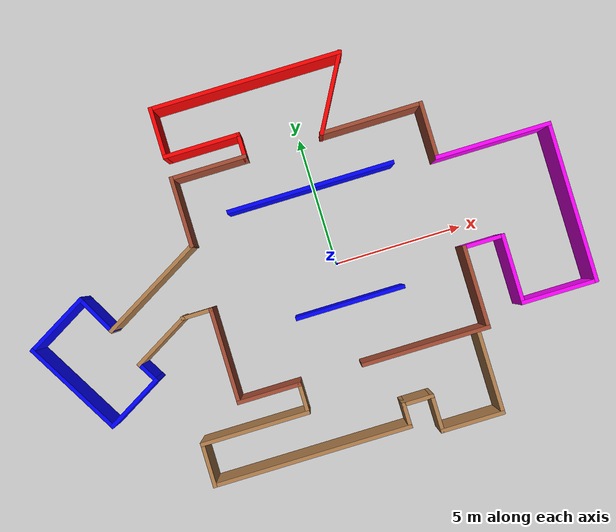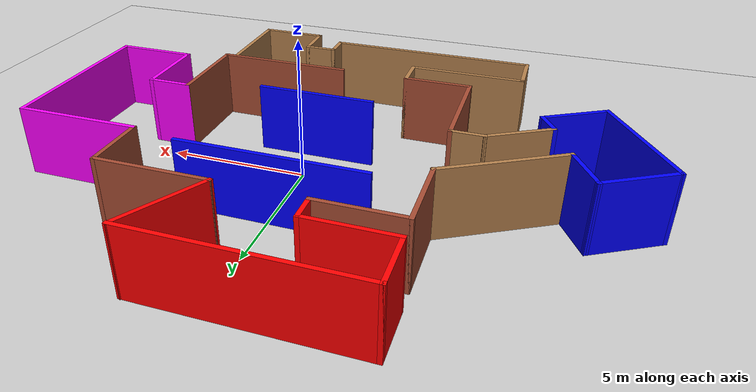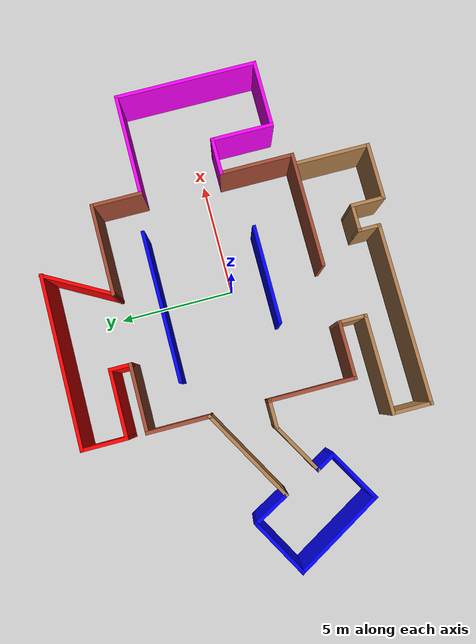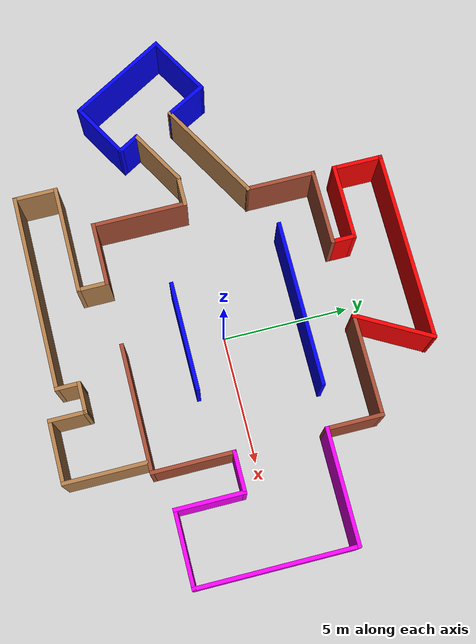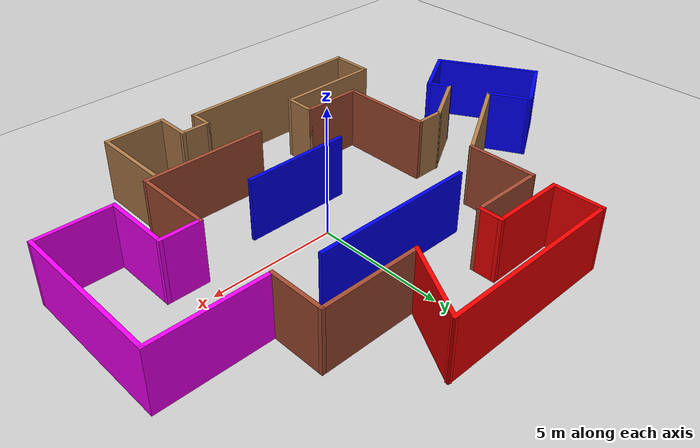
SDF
<sdf version="1.6">
 <world name="default">
  <light name="sun" type="directional">
   <pose>0 0 10 0 -0 0</pose>
   <diffuse>0.8 0.8 0.8 1</diffuse>
   <specular>0.1 0.1 0.1 1</specular>
   <attenuation>
    <range>1000</range>
    <constant>0.9</constant>
    <linear>0.01</linear>
    <quadratic>0.001</quadratic>
   </attenuation>
   <direction>-0.5 0.5 -1</direction>
  </light>
  <model name="ground_plane">
   <static>1</static>
   <link name="link">
    <collision name="collision">
     <geometry><plane><normal>0 0 1</normal><size>100 100</size></plane></geometry>
     <surface><friction><ode><mu>100</mu><mu2>50</mu2></ode></friction></surface>
    </collision>
    <visual name="visual">
     <cast_shadows>0</cast_shadows>
     <geometry><plane><normal>0 0 1</normal><size>100 100</size></plane></geometry>
     <material>
      <script><uri>file://media/materials/scripts/gazebo.material</uri><name>Gazebo/Grey</name></script>
     </material>
    </visual>
   </link>
  </model>
  <gravity>0 0 -9.8</gravity>
  <magnetic_field>6e-06 2.3e-05 -4.2e-05</magnetic_field>
  <atmosphere type="adiabatic"/>
  <physics name="default_physics" default="0" type="ode">
   <max_step_size>0.001</max_step_size>
   <real_time_factor>1</real_time_factor>
   <real_time_update_rate>1000</real_time_update_rate>
  </physics>
  <scene><ambient>0.4 0.4 0.4 1</ambient><background>0.7 0.7 0.7 1</background><shadows>1</shadows></scene>
  <spherical_coordinates>
   <surface_model>EARTH_WGS84</surface_model>
   <latitude_deg>0</latitude_deg>
   <longitude_deg>0</longitude_deg>
   <elevation>0</elevation>
   <heading_deg>0</heading_deg>
  </spherical_coordinates>
  <model name="compl_world">
   <pose>-1.39637 0.233459 0 0 -0 0</pose>
   <link name="Wall_12">
    <collision name="Wall_12_Collision">
     <geometry><box><size>2.75 0.15 2.5</size></box></geometry>
     <pose>0 0 1.25 0 -0 0</pose>
    </collision>
    <visual name="Wall_12_Visual">
     <pose>0 0 1.25 0 -0 0</pose>
     <geometry><box><size>2.75 0.15 2.5</size></box></geometry>
     <material>
      <script><uri>file://media/materials/scripts/gazebo.material</uri><name>Gazebo/Bricks</name></script>
      <ambient>1 1 1 1</ambient>
     </material>
    </visual>
    <pose>-3.61361 3.28651 0 0 0 -1.5708</pose>
   </link>
   <link name="Wall_14">
    <collision name="Wall_14_Collision">
     <geometry><box><size>3 0.15 2.5</size></box></geometry>
     <pose>0 0 1.25 0 -0 0</pose>
    </collision>
    <visual name="Wall_14_Visual">
     <pose>0 0 1.25 0 -0 0</pose>
     <geometry><box><size>3 0.15 2.5</size></box></geometry>
     <material>
      <script><uri>file://media/materials/scripts/gazebo.material</uri><name>Gazebo/Bricks</name></script>
      <ambient>1 1 1 1</ambient>
     </material>
    </visual>
    <pose>-2.18861 4.58651 0 0 -0 0</pose>
   </link>
   <link name="Wall_19">
    <collision name="Wall_19_Collision">
     <geometry><box><size>5 0.15 2.5</size></box></geometry>
     <pose>0 0 1.25 0 -0 0</pose>
    </collision>
    <visual name="Wall_19_Visual">
     <pose>0 0 1.25 0 -0 0</pose>
     <geometry><box><size>5 0.15 2.5</size></box></geometry>
     <material>
      <script><uri>file://media/materials/scripts/gazebo.material</uri><name>Gazebo/Bricks</name></script>
      <ambient>1 1 1 1</ambient>
     </material>
    </visual>
    <pose>3.66139 -4.11349 0 0 -0 0</pose>
   </link>
   <link name="Wall_20">
    <collision name="Wall_20_Collision">
     <geometry><box><size>3.25 0.15 2.5</size></box></geometry>
     <pose>0 0 1.25 0 -0 0</pose>
    </collision>
    <visual name="Wall_20_Visual">
     <pose>0 0 1.25 0 -0 0</pose>
     <geometry><box><size>3.25 0.15 2.5</size></box></geometry>
     <material>
      <script><uri>file://media/materials/scripts/gazebo.material</uri><name>Gazebo/Bricks</name></script>
      <ambient>1 1 1 1</ambient>
     </material>
    </visual>
    <pose>6.08638 -2.56349 0 0 -0 1.5708</pose>
   </link>
   <link name="Wall_23">
    <collision name="Wall_23_Collision">
     <geometry><box><size>2.5 0.15 2.5</size></box></geometry>
     <pose>0 0 1.25 0 -0 0</pose>
    </collision>
    <visual name="Wall_23_Visual">
     <pose>0 0 1.25 0 -0 0</pose>
     <geometry><box><size>2.5 0.15 2.5</size></box></geometry>
     <material>
      <script><uri>file://media/materials/scripts/gazebo.material</uri><name>Gazebo/Bricks</name></script>
      <ambient>1 1 1 1</ambient>
     </material>
    </visual>
    <pose>-2.43861 -4.11349 0 0 -0 0</pose>
   </link>
   <link name="Wall_25">
    <collision name="Wall_25_Collision">
     <geometry><box><size>3.75 0.15 2.5</size></box></geometry>
     <pose>0 0 1.25 0 -0 0</pose>
    </collision>
    <visual name="Wall_25_Visual">
     <pose>0 0 1.25 0 -0 0</pose>
     <geometry><box><size>3.75 0.15 2.5</size></box></geometry>
     <material>
      <script><uri>file://media/materials/scripts/gazebo.material</uri><name>Gazebo/Bricks</name></script>
      <ambient>1 1 1 1</ambient>
     </material>
    </visual>
    <pose>-3.61361 -2.31349 0 0 -0 1.5708</pose>
   </link>
   <link name="Wall_31">
    <collision name="Wall_31_Collision">
     <geometry><box><size>6.5 0.15 2.5</size></box></geometry>
     <pose>0 0 1.25 0 -0 0</pose>
    </collision>
    <visual name="Wall_31_Visual">
     <pose>0 0 1.25 0 -0 0</pose>
     <geometry><box><size>6.5 0.15 2.5</size></box></geometry>
     <material>
      <script><uri>file://media/materials/scripts/gazebo.material</uri><name>Gazebo/Grey</name></script>
      <ambient>0 0 1 1</ambient>
     </material>
    </visual>
    <pose>1.25238 2.78947 0 0 -0 0</pose>
   </link>
   <link name="Wall_33">
    <collision name="Wall_33_Collision">
     <geometry><box><size>4.25 0.15 2.5</size></box></geometry>
     <pose>0 0 1.25 0 -0 0</pose>
    </collision>
    <visual name="Wall_33_Visual">
     <pose>0 0 1.25 0 -0 0</pose>
     <geometry><box><size>4.25 0.15 2.5</size></box></geometry>
     <material>
      <script><uri>file://media/materials/scripts/gazebo.material</uri><name>Gazebo/Grey</name></script>
      <ambient>0 0 1 1</ambient>
     </material>
    </visual>
    <pose>1.43079 -1.75917 0 0 -0 0</pose>
   </link>
   <link name="Wall_35">
    <collision name="Wall_35_Collision">
     <geometry><box><size>4.5 0.15 2.5</size></box></geometry>
     <pose>0 0 1.25 0 -0 0</pose>
    </collision>
    <visual name="Wall_35_Visual">
     <pose>0 0 1.25 0 -0 0</pose>
     <geometry><box><size>4.5 0.15 2.5</size></box></geometry>
     <material>
      <script><uri>file://media/materials/scripts/gazebo.material</uri><name>Gazebo/Grey</name></script>
      <ambient>1 0 1 1</ambient>
     </material>
    </visual>
    <pose>8.26139 2.48651 0 0 -0 0</pose>
   </link>
   <link name="Wall_36">
    <collision name="Wall_36_Collision">
     <geometry><box><size>6.25 0.15 2.5</size></box></geometry>
     <pose>0 0 1.25 0 -0 0</pose>
    </collision>
    <visual name="Wall_36_Visual">
     <pose>0 0 1.25 0 -0 0</pose>
     <geometry><box><size>6.25 0.15 2.5</size></box></geometry>
     <material>
      <script><uri>file://media/materials/scripts/gazebo.material</uri><name>Gazebo/Grey</name></script>
      <ambient>1 0 1 1</ambient>
     </material>
    </visual>
    <pose>10.4364 -0.563493 0 0 0 -1.5708</pose>
   </link>
   <link name="Wall_37">
    <collision name="Wall_37_Collision">
     <geometry><box><size>3 0.15 2.5</size></box></geometry>
     <pose>0 0 1.25 0 -0 0</pose>
    </collision>
    <visual name="Wall_37_Visual">
     <pose>0 0 1.25 0 -0 0</pose>
     <geometry><box><size>3 0.15 2.5</size></box></geometry>
     <material>
      <script><uri>file://media/materials/scripts/gazebo.material</uri><name>Gazebo/Grey</name></script>
      <ambient>1 0 1 1</ambient>
     </material>
    </visual>
    <pose>9.01139 -3.61349 0 0 -0 3.14159</pose>
   </link>
   <link name="Wall_38">
    <collision name="Wall_38_Collision">
     <geometry><box><size>2.75 0.15 2.5</size></box></geometry>
     <pose>0 0 1.25 0 -0 0</pose>
    </collision>
    <visual name="Wall_38_Visual">
     <pose>0 0 1.25 0 -0 0</pose>
     <geometry><box><size>2.75 0.15 2.5</size></box></geometry>
     <material>
      <script><uri>file://media/materials/scripts/gazebo.material</uri><name>Gazebo/Grey</name></script>
      <ambient>1 0 1 1</ambient>
     </material>
    </visual>
    <pose>7.58638 -2.31349 0 0 -0 1.5708</pose>
   </link>
   <link name="Wall_39">
    <collision name="Wall_39_Collision">
     <geometry><box><size>1.65 0.15 2.5</size></box></geometry>
     <pose>0 0 1.25 0 -0 0</pose>
    </collision>
    <visual name="Wall_39_Visual">
     <pose>0 0 1.25 0 -0 0</pose>
     <geometry><box><size>1.65 0.15 2.5</size></box></geometry>
     <material>
      <script><uri>file://media/materials/scripts/gazebo.material</uri><name>Gazebo/Grey</name></script>
      <ambient>1 0 1 1</ambient>
     </material>
    </visual>
    <pose>6.83638 -1.01349 0 0 -0 3.14159</pose>
   </link>
   <link name="Wall_41">
    <collision name="Wall_41_Collision">
     <geometry><box><size>1 0.15 2.5</size></box></geometry>
     <pose>0 0 1.25 0 -0 0</pose>
    </collision>
    <visual name="Wall_41_Visual">
     <pose>0 0 1.25 0 -0 0</pose>
     <geometry><box><size>1 0.15 2.5</size></box></geometry>
     <material>
      <script><uri>file://media/materials/scripts/gazebo.material</uri><name>Gazebo/Grey</name></script>
      <ambient>1 0 0 1</ambient>
     </material>
    </visual>
    <pose>-0.763615 5.01151 0 0 -0 1.5708</pose>
   </link>
   <link name="Wall_42">
    <collision name="Wall_42_Collision">
     <geometry><box><size>3 0.15 2.5</size></box></geometry>
     <pose>0 0 1.25 0 -0 0</pose>
    </collision>
    <visual name="Wall_42_Visual">
     <pose>0 0 1.25 0 -0 0</pose>
     <geometry><box><size>3 0.15 2.5</size></box></geometry>
     <material>
      <script><uri>file://media/materials/scripts/gazebo.material</uri><name>Gazebo/Grey</name></script>
      <ambient>1 0 0 1</ambient>
     </material>
    </visual>
    <pose>-2.18861 5.43651 0 0 -0 3.14159</pose>
   </link>
   <link name="Wall_43">
    <collision name="Wall_43_Collision">
     <geometry><box><size>2 0.15 2.5</size></box></geometry>
     <pose>0 0 1.25 0 -0 0</pose>
    </collision>
    <visual name="Wall_43_Visual">
     <pose>0 0 1.25 0 -0 0</pose>
     <geometry><box><size>2 0.15 2.5</size></box></geometry>
     <material>
      <script><uri>file://media/materials/scripts/gazebo.material</uri><name>Gazebo/Grey</name></script>
      <ambient>1 0 0 1</ambient>
     </material>
    </visual>
    <pose>-3.61361 6.36151 0 0 -0 1.5708</pose>
   </link>
   <link name="Wall_44">
    <collision name="Wall_44_Collision">
     <geometry><box><size>7.5 0.15 2.5</size></box></geometry>
     <pose>0 0 1.25 0 -0 0</pose>
    </collision>
    <visual name="Wall_44_Visual">
     <pose>0 0 1.25 0 -0 0</pose>
     <geometry><box><size>7.5 0.15 2.5</size></box></geometry>
     <material>
      <script><uri>file://media/materials/scripts/gazebo.material</uri><name>Gazebo/Grey</name></script>
      <ambient>1 0 0 1</ambient>
     </material>
    </visual>
    <pose>0.061385 7.28651 0 0 -0 0</pose>
   </link>
   <link name="Wall_45">
    <collision name="Wall_45_Collision">
     <geometry><box><size>3.23869 0.15 2.5</size></box></geometry>
     <pose>0 0 1.25 0 -0 0</pose>
    </collision>
    <visual name="Wall_45_Visual">
     <pose>0 0 1.25 0 -0 0</pose>
     <geometry><box><size>3.23869 0.15 2.5</size></box></geometry>
     <material>
      <script><uri>file://media/materials/scripts/gazebo.material</uri><name>Gazebo/Grey</name></script>
      <ambient>1 0 0 1</ambient>
     </material>
    </visual>
    <pose>2.98638 5.93651 0 0 0 -2.07789</pose>
   </link>
   <link name="Wall_47">
    <collision name="Wall_47_Collision">
     <geometry><box><size>1.25 0.15 2.5</size></box></geometry>
     <pose>0 0 1.25 0 -0 0</pose>
    </collision>
    <visual name="Wall_47_Visual">
     <pose>0 0 1.25 0 -0 0</pose>
     <geometry><box><size>1.25 0.15 2.5</size></box></geometry>
     <material>
      <script><uri>file://media/materials/scripts/gazebo.material</uri><name>Gazebo/Wood</name></script>
      <ambient>1 1 1 1</ambient>
     </material>
    </visual>
    <pose>-4.16362 -0.513493 0 0 -0 3.14159</pose>
   </link>
   <link name="Wall_48">
    <collision name="Wall_48_Collision">
     <geometry><box><size>2.5 0.15 2.5</size></box></geometry>
     <pose>0 0 1.25 0 -0 0</pose>
    </collision>
    <visual name="Wall_48_Visual">
     <pose>0 0 1.25 0 -0 0</pose>
     <geometry><box><size>2.5 0.15 2.5</size></box></geometry>
     <material>
      <script><uri>file://media/materials/scripts/gazebo.material</uri><name>Gazebo/Wood</name></script>
      <ambient>1 1 1 1</ambient>
     </material>
    </visual>
    <pose>-5.73119 -1.10099 0 0 0 -2.61799</pose>
   </link>
   <link name="Wall_50">
    <collision name="Wall_50_Collision">
     <geometry><box><size>4.5 0.15 2.5</size></box></geometry>
     <pose>0 0 1.25 0 -0 0</pose>
    </collision>
    <visual name="Wall_50_Visual">
     <pose>0 0 1.25 0 -0 0</pose>
     <geometry><box><size>4.5 0.15 2.5</size></box></geometry>
     <material>
      <script><uri>file://media/materials/scripts/gazebo.material</uri><name>Gazebo/Wood</name></script>
      <ambient>1 1 1 1</ambient>
     </material>
    </visual>
    <pose>-5.49722 0.899007 0 0 0 -2.61799</pose>
   </link>
   <link name="Wall_52">
    <collision name="Wall_52_Collision">
     <geometry><box><size>1 0.15 2.5</size></box></geometry>
     <pose>0 0 1.25 0 -0 0</pose>
    </collision>
    <visual name="Wall_52_Visual">
     <pose>0 0 1.25 0 -0 0</pose>
     <geometry><box><size>1 0.15 2.5</size></box></geometry>
     <material>
      <script><uri>file://media/materials/scripts/gazebo.material</uri><name>Gazebo/Grey</name></script>
      <ambient>0 0 1 1</ambient>
     </material>
    </visual>
    <pose>-6.53627 -2.05655 0 0 0 -1.0472</pose>
   </link>
   <link name="Wall_53">
    <collision name="Wall_53_Collision">
     <geometry><box><size>2.5 0.15 2.5</size></box></geometry>
     <pose>0 0 1.25 0 -0 0</pose>
    </collision>
    <visual name="Wall_53_Visual">
     <pose>0 0 1.25 0 -0 0</pose>
     <geometry><box><size>2.5 0.15 2.5</size></box></geometry>
     <material>
      <script><uri>file://media/materials/scripts/gazebo.material</uri><name>Gazebo/Grey</name></script>
      <ambient>0 0 1 1</ambient>
     </material>
    </visual>
    <pose>-7.34135 -3.01211 0 0 0 -2.61799</pose>
   </link>
   <link name="Wall_54">
    <collision name="Wall_54_Collision">
     <geometry><box><size>4.25 0.15 2.5</size></box></geometry>
     <pose>0 0 1.25 0 -0 0</pose>
    </collision>
    <visual name="Wall_54_Visual">
     <pose>0 0 1.25 0 -0 0</pose>
     <geometry><box><size>4.25 0.15 2.5</size></box></geometry>
     <material>
      <script><uri>file://media/materials/scripts/gazebo.material</uri><name>Gazebo/Grey</name></script>
      <ambient>0 0 1 1</ambient>
     </material>
    </visual>
    <pose>-9.38393 -1.82426 0 0 -0 2.0944</pose>
   </link>
   <link name="Wall_55">
    <collision name="Wall_55_Collision">
     <geometry><box><size>2.75 0.15 2.5</size></box></geometry>
     <pose>0 0 1.25 0 -0 0</pose>
    </collision>
    <visual name="Wall_55_Visual">
     <pose>0 0 1.25 0 -0 0</pose>
     <geometry><box><size>2.75 0.15 2.5</size></box></geometry>
     <material>
      <script><uri>file://media/materials/scripts/gazebo.material</uri><name>Gazebo/Grey</name></script>
      <ambient>0 0 1 1</ambient>
     </material>
    </visual>
    <pose>-9.2831 0.60109 0 0 -0 0.523599</pose>
   </link>
   <link name="Wall_56">
    <collision name="Wall_56_Collision">
     <geometry><box><size>1.78562 0.15 2.5</size></box></geometry>
     <pose>0 0 1.25 0 -0 0</pose>
    </collision>
    <visual name="Wall_56_Visual">
     <pose>0 0 1.25 0 -0 0</pose>
     <geometry><box><size>1.78562 0.15 2.5</size></box></geometry>
     <material>
      <script><uri>file://media/materials/scripts/gazebo.material</uri><name>Gazebo/Grey</name></script>
      <ambient>0 0 1 1</ambient>
     </material>
    </visual>
    <pose>-7.76905 0.531299 0 0 0 -1.07616</pose>
   </link>
   <link name="Wall_58">
    <collision name="Wall_58_Collision">
     <geometry><box><size>1.25 0.15 2.5</size></box></geometry>
     <pose>0 0 1.25 0 -0 0</pose>
    </collision>
    <visual name="Wall_58_Visual">
     <pose>0 0 1.25 0 -0 0</pose>
     <geometry><box><size>1.25 0.15 2.5</size></box></geometry>
     <material>
      <script><uri>file://media/materials/scripts/gazebo.material</uri><name>Gazebo/Wood</name></script>
      <ambient>1 1 1 1</ambient>
     </material>
    </visual>
    <pose>-1.26361 -4.66349 0 0 0 -1.5708</pose>
   </link>
   <link name="Wall_59">
    <collision name="Wall_59_Collision">
     <geometry><box><size>4.25 0.15 2.5</size></box></geometry>
     <pose>0 0 1.25 0 -0 0</pose>
    </collision>
    <visual name="Wall_59_Visual">
     <pose>0 0 1.25 0 -0 0</pose>
     <geometry><box><size>4.25 0.15 2.5</size></box></geometry>
     <material>
      <script><uri>file://media/materials/scripts/gazebo.material</uri><name>Gazebo/Wood</name></script>
      <ambient>1 1 1 1</ambient>
     </material>
    </visual>
    <pose>-3.31361 -5.21349 0 0 -0 3.14159</pose>
   </link>
   <link name="Wall_60">
    <collision name="Wall_60_Collision">
     <geometry><box><size>1.75 0.15 2.5</size></box></geometry>
     <pose>0 0 1.25 0 -0 0</pose>
    </collision>
    <visual name="Wall_60_Visual">
     <pose>0 0 1.25 0 -0 0</pose>
     <geometry><box><size>1.75 0.15 2.5</size></box></geometry>
     <material>
      <script><uri>file://media/materials/scripts/gazebo.material</uri><name>Gazebo/Wood</name></script>
      <ambient>1 1 1 1</ambient>
     </material>
    </visual>
    <pose>-5.36362 -6.01349 0 0 0 -1.5708</pose>
   </link>
   <link name="Wall_61">
    <collision name="Wall_61_Collision">
     <geometry><box><size>7.75 0.15 2.5</size></box></geometry>
     <pose>0 0 1.25 0 -0 0</pose>
    </collision>
    <visual name="Wall_61_Visual">
     <pose>0 0 1.25 0 -0 0</pose>
     <geometry><box><size>7.75 0.15 2.5</size></box></geometry>
     <material>
      <script><uri>file://media/materials/scripts/gazebo.material</uri><name>Gazebo/Wood</name></script>
      <ambient>1 1 1 1</ambient>
     </material>
    </visual>
    <pose>-1.56361 -6.81349 0 0 -0 0</pose>
   </link>
   <link name="Wall_62">
    <collision name="Wall_62_Collision">
     <geometry><box><size>1 0.15 2.5</size></box></geometry>
     <pose>0 0 1.25 0 -0 0</pose>
    </collision>
    <visual name="Wall_62_Visual">
     <pose>0 0 1.25 0 -0 0</pose>
     <geometry><box><size>1 0.15 2.5</size></box></geometry>
     <material>
      <script><uri>file://media/materials/scripts/gazebo.material</uri><name>Gazebo/Wood</name></script>
      <ambient>1 1 1 1</ambient>
     </material>
    </visual>
    <pose>2.23638 -6.38849 0 0 -0 1.5708</pose>
   </link>
   <link name="Wall_63">
    <collision name="Wall_63_Collision">
     <geometry><box><size>1.25 0.15 2.5</size></box></geometry>
     <pose>0 0 1.25 0 -0 0</pose>
    </collision>
    <visual name="Wall_63_Visual">
     <pose>0 0 1.25 0 -0 0</pose>
     <geometry><box><size>1.25 0.15 2.5</size></box></geometry>
     <material>
      <script><uri>file://media/materials/scripts/gazebo.material</uri><name>Gazebo/Wood</name></script>
      <ambient>1 1 1 1</ambient>
     </material>
    </visual>
    <pose>2.78639 -5.96349 0 0 -0 0</pose>
   </link>
   <link name="Wall_64">
    <collision name="Wall_64_Collision">
     <geometry><box><size>1.5 0.15 2.5</size></box></geometry>
     <pose>0 0 1.25 0 -0 0</pose>
    </collision>
    <visual name="Wall_64_Visual">
     <pose>0 0 1.25 0 -0 0</pose>
     <geometry><box><size>1.5 0.15 2.5</size></box></geometry>
     <material>
      <script><uri>file://media/materials/scripts/gazebo.material</uri><name>Gazebo/Wood</name></script>
      <ambient>1 1 1 1</ambient>
     </material>
    </visual>
    <pose>3.33638 -6.63849 0 0 0 -1.5708</pose>
   </link>
   <link name="Wall_65">
    <collision name="Wall_65_Collision">
     <geometry><box><size>2.5 0.15 2.5</size></box></geometry>
     <pose>0 0 1.25 0 -0 0</pose>
    </collision>
    <visual name="Wall_65_Visual">
     <pose>0 0 1.25 0 -0 0</pose>
     <geometry><box><size>2.5 0.15 2.5</size></box></geometry>
     <material>
      <script><uri>file://media/materials/scripts/gazebo.material</uri><name>Gazebo/Wood</name></script>
      <ambient>1 1 1 1</ambient>
     </material>
    </visual>
    <pose>4.51138 -7.31349 0 0 -0 0</pose>
   </link>
   <link name="Wall_66">
    <collision name="Wall_66_Collision">
     <geometry><box><size>3.25 0.15 2.5</size></box></geometry>
     <pose>0 0 1.25 0 -0 0</pose>
    </collision>
    <visual name="Wall_66_Visual">
     <pose>0 0 1.25 0 -0 0</pose>
     <geometry><box><size>3.25 0.15 2.5</size></box></geometry>
     <material>
      <script><uri>file://media/materials/scripts/gazebo.material</uri><name>Gazebo/Wood</name></script>
      <ambient>1 1 1 1</ambient>
     </material>
    </visual>
    <pose>5.68638 -5.76349 0 0 -0 1.5708</pose>
   </link>
   <link name="Wall_7">
    <collision name="Wall_7_Collision">
     <geometry><box><size>2.25 0.15 2.5</size></box></geometry>
     <pose>0 0 1.25 0 -0 0</pose>
    </collision>
    <visual name="Wall_7_Visual">
     <pose>0 0 1.25 0 -0 0</pose>
     <geometry><box><size>2.25 0.15 2.5</size></box></geometry>
     <material>
      <script><uri>file://media/materials/scripts/gazebo.material</uri><name>Gazebo/Bricks</name></script>
      <ambient>1 1 1 1</ambient>
     </material>
    </visual>
    <pose>6.08638 3.53651 0 0 0 -1.5708</pose>
   </link>
   <link name="Wall_9">
    <collision name="Wall_9_Collision">
     <geometry><box><size>4 0.15 2.5</size></box></geometry>
     <pose>0 0 1.25 0 -0 0</pose>
    </collision>
    <visual name="Wall_9_Visual">
     <pose>0 0 1.25 0 -0 0</pose>
     <geometry><box><size>4 0.15 2.5</size></box></geometry>
     <material>
      <script><uri>file://media/materials/scripts/gazebo.material</uri><name>Gazebo/Bricks</name></script>
      <ambient>1 1 1 1</ambient>
     </material>
    </visual>
    <pose>4.16139 4.58651 0 0 -0 3.14159</pose>
   </link>
   <static>1</static>
  </model>
 </world>
</sdf>
